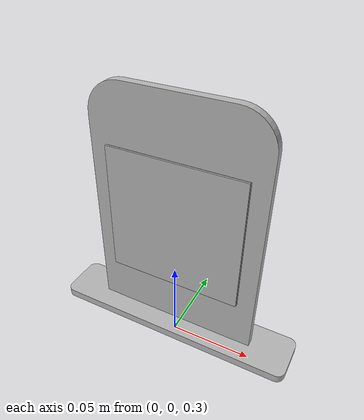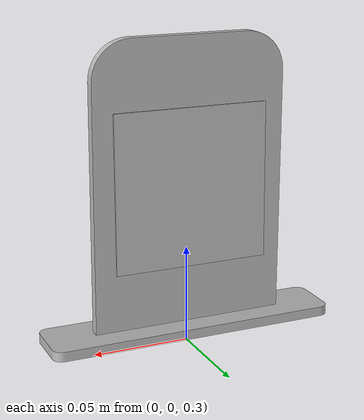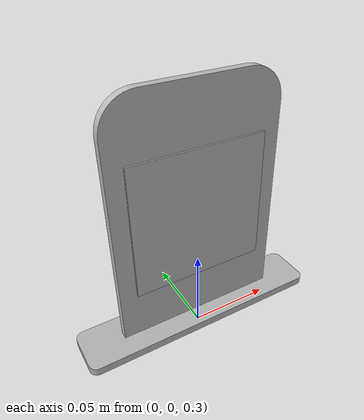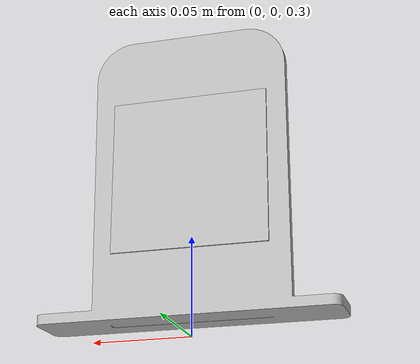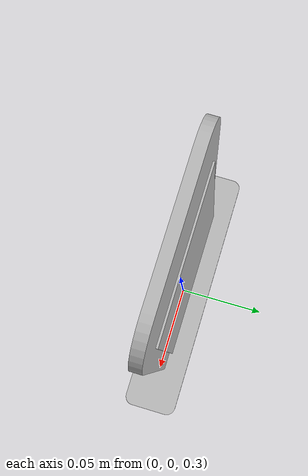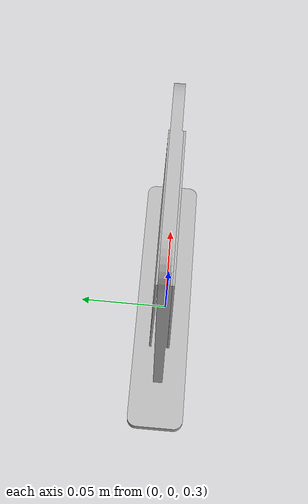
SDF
<?xml version='1.0'?>
<sdf version='1.7'>
  <model name='pancarte_qr_code_haie-vive'>
    <pose>0 0.0 0.345 0 -0 0</pose>
    <model name='pancarte'>
      <static>1</static>
      <link name='link'>
        <collision name='collision'>
          <pose>0 0.075 0 0 -0 0</pose>
          <geometry>
            <box>
              <size>0.15 0.15 0.03</size>
            </box>
          </geometry>
        </collision>
        <visual name='visual'>
          <geometry>
            <mesh>
              <scale>0.001 0.001 0.001</scale>
              <uri>model://pancarte/meshes/PANCARTE_QR.stl</uri>
            </mesh>
          </geometry>
        </visual>
      </link>
      <pose>8.8e-05 0.001115 -0.037644 1.55978 -0 0</pose>
    </model>
    <model name='qr_code_zone1Haie-Vive'>
      <static>1</static>
      <link name='qr_code_zone1Haie-Vive_link'>
        <pose>0 0 0.001 0 -0 1.5708</pose>
        <visual name='visual_qr_code_zone1Haie-Vive'>
          <cast_shadows>0</cast_shadows>
          <geometry>
            <box>
              <size>0.08 0.08 0.001</size>
            </box>
          </geometry>
          <material>
            <script>
              <uri>model://qr_code_zone1Haie-Vive/materials/scripts</uri>
              <uri>model://qr_code_zone1Haie-Vive/materials/textures</uri>
              <name>qr_code_zone1Haie-Vive/qr_code_zone1Haie-Vive</name>
            </script>
          </material>
        </visual>
      </link>
      <pose>-8.8e-05 -0.001115 0.037644 1.55615 -0 0</pose>
    </model>

    <model name='qr_code_zone1Haie-Vive_0'>
      <static>1</static>
      <link name='qr_code_zone1Haie-Vive_link'>
        <pose>0 0 0.001 0 -0 1.5708</pose>
        <visual name='visual_qr_code_zone1Haie-Vive'>
          <cast_shadows>0</cast_shadows>
          <geometry>
            <box>
              <size>0.08 0.08 0.001</size>
            </box>
          </geometry>
          <material>
            <script>
              <uri>model://qr_code_zone1Haie-Vive/materials/scripts</uri>
              <uri>model://qr_code_zone1Haie-Vive/materials/textures</uri>
              <name>qr_code_zone1Haie-Vive/qr_code_zone1Haie-Vive</name>
            </script>
          </material>
        </visual>
      </link>
      <pose>-8.8e-05 0.0072 0.037644 1.55615 3.14 0</pose>
    </model>
    <static>0</static>
    <allow_auto_disable>1</allow_auto_disable>
  </model>
</sdf>
